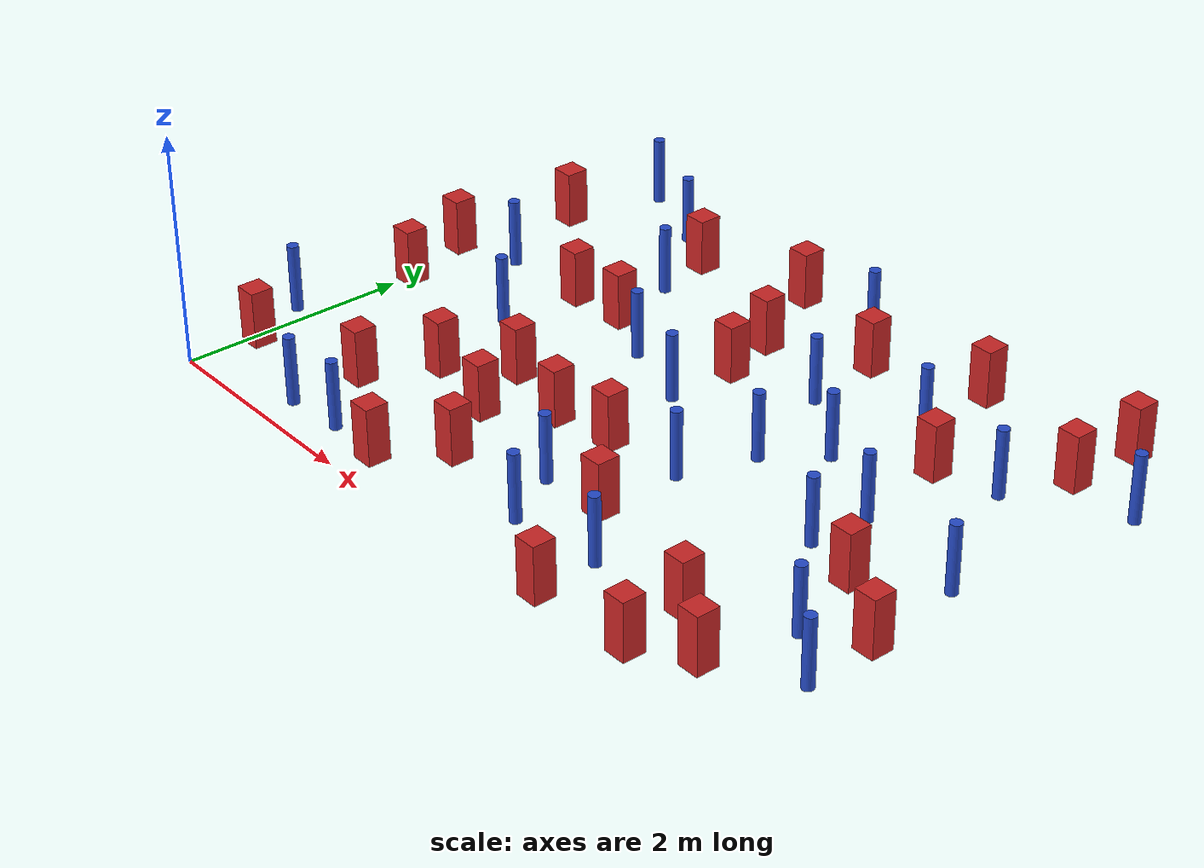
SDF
<sdf version="1.6">
 <model name="dense_67">
  <model name="square_post_obstacle9">
   <static>true</static>
   <pose>4.55035390656 4.47346086825 8.22691968438e-08 7.2212513382e-06 -7.54495500217e-07 2.29674213826e-05</pose>
   <link name="link">
    <pose>0 0 0.25 0 -0 0</pose>
    <inertial>
     <mass>100</mass>
     <inertia>
      <ixx>0.166667</ixx>
      <ixy>0</ixy>
      <ixz>0</ixz>
      <iyy>0.166667</iyy>
      <iyz>0</iyz>
      <izz>0.166667</izz>
     </inertia>
    </inertial>
    <collision name="collision"><geometry><box><size>.2 .2 .5</size></box></geometry></collision>
    <visual name="visual">
     <geometry><box><size>.2 .2 .5</size></box></geometry>
     <material>
      <script><name>Gazebo/Red</name><uri>file://media/materials/scripts/gazebo.material</uri></script>
     </material>
    </visual>
   </link>
  </model>
  <model name="pole_obstacle14">
   <static>true</static>
   <pose>5.5681106133 3.5373328224 2.88873142074e-08 -9.90536690245e-09 4.6021994898e-07 -1.20965994966e-07</pose>
   <link name="link">
    <pose>0 0 0.3 0 -0 0</pose>
    <inertial>
     <mass>1</mass>
     <inertia><ixx>0.145833</ixx><ixy>0</ixy><ixz>0</ixz><iyy>0.145833</iyy><iyz>0</iyz><izz>0.125</izz></inertia>
    </inertial>
    <collision name="collision">
     <geometry><cylinder><radius>0.05</radius><length>.6</length></cylinder></geometry>
    </collision>
    <visual name="visual">
     <geometry><cylinder><radius>0.05</radius><length>.6</length></cylinder></geometry>
     <material>
      <script><name>Gazebo/Blue</name><uri>file://media/materials/scripts/gazebo.material</uri></script>
     </material>
    </visual>
   </link>
  </model>
  <model name="pole_obstacle15">
   <static>true</static>
   <pose>4.38528797841 2.95199684706 2.88873142074e-08 -9.90536690245e-09 4.6021994898e-07 -1.20965994966e-07</pose>
   <link name="link">
    <pose>0 0 0.3 0 -0 0</pose>
    <inertial>
     <mass>1</mass>
     <inertia><ixx>0.145833</ixx><ixy>0</ixy><ixz>0</ixz><iyy>0.145833</iyy><iyz>0</iyz><izz>0.125</izz></inertia>
    </inertial>
    <collision name="collision">
     <geometry><cylinder><radius>0.05</radius><length>.6</length></cylinder></geometry>
    </collision>
    <visual name="visual">
     <geometry><cylinder><radius>0.05</radius><length>.6</length></cylinder></geometry>
     <material>
      <script><name>Gazebo/Blue</name><uri>file://media/materials/scripts/gazebo.material</uri></script>
     </material>
    </visual>
   </link>
  </model>
  <model name="pole_obstacle17">
   <static>true</static>
   <pose>1.5737481239 3.690412965 2.88873142074e-08 -9.90536689791e-09 4.6021994899e-07 -1.20965994959e-07</pose>
   <link name="link">
    <pose>0 0 0.3 0 -0 0</pose>
    <inertial>
     <mass>1</mass>
     <inertia><ixx>0.145833</ixx><ixy>0</ixy><ixz>0</ixz><iyy>0.145833</iyy><iyz>0</iyz><izz>0.125</izz></inertia>
    </inertial>
    <collision name="collision">
     <geometry><cylinder><radius>0.05</radius><length>.6</length></cylinder></geometry>
    </collision>
    <visual name="visual">
     <geometry><cylinder><radius>0.05</radius><length>.6</length></cylinder></geometry>
     <material>
      <script><name>Gazebo/Blue</name><uri>file://media/materials/scripts/gazebo.material</uri></script>
     </material>
    </visual>
   </link>
  </model>
  <model name="square_post_obstacle13">
   <static>true</static>
   <pose>1.11379736712 0.899175267969 8.22691968438e-08 7.2212513382e-06 -7.54495500217e-07 2.29674213826e-05</pose>
   <link name="link">
    <pose>0 0 0.25 0 -0 0</pose>
    <inertial>
     <mass>100</mass>
     <inertia>
      <ixx>0.166667</ixx>
      <ixy>0</ixy>
      <ixz>0</ixz>
      <iyy>0.166667</iyy>
      <iyz>0</iyz>
      <izz>0.166667</izz>
     </inertia>
    </inertial>
    <collision name="collision"><geometry><box><size>.2 .2 .5</size></box></geometry></collision>
    <visual name="visual">
     <geometry><box><size>.2 .2 .5</size></box></geometry>
     <material>
      <script><name>Gazebo/Red</name><uri>file://media/materials/scripts/gazebo.material</uri></script>
     </material>
    </visual>
   </link>
  </model>
  <model name="square_post_obstacle16">
   <static>true</static>
   <pose>-0.161220654232 2.8316874739 8.22691968438e-08 7.2212513382e-06 -7.54495500217e-07 2.29674213826e-05</pose>
   <link name="link">
    <pose>0 0 0.25 0 -0 0</pose>
    <inertial>
     <mass>100</mass>
     <inertia>
      <ixx>0.166667</ixx>
      <ixy>0</ixy>
      <ixz>0</ixz>
      <iyy>0.166667</iyy>
      <iyz>0</iyz>
      <izz>0.166667</izz>
     </inertia>
    </inertial>
    <collision name="collision"><geometry><box><size>.2 .2 .5</size></box></geometry></collision>
    <visual name="visual">
     <geometry><box><size>.2 .2 .5</size></box></geometry>
     <material>
      <script><name>Gazebo/Red</name><uri>file://media/materials/scripts/gazebo.material</uri></script>
     </material>
    </visual>
   </link>
  </model>
  <model name="square_post_obstacle17">
   <static>true</static>
   <pose>5.23929450298 0.213188726177 8.22691968438e-08 7.2212513382e-06 -7.54495500217e-07 2.29674213826e-05</pose>
   <link name="link">
    <pose>0 0 0.25 0 -0 0</pose>
    <inertial>
     <mass>100</mass>
     <inertia>
      <ixx>0.166667</ixx>
      <ixy>0</ixy>
      <ixz>0</ixz>
      <iyy>0.166667</iyy>
      <iyz>0</iyz>
      <izz>0.166667</izz>
     </inertia>
    </inertial>
    <collision name="collision"><geometry><box><size>.2 .2 .5</size></box></geometry></collision>
    <visual name="visual">
     <geometry><box><size>.2 .2 .5</size></box></geometry>
     <material>
      <script><name>Gazebo/Red</name><uri>file://media/materials/scripts/gazebo.material</uri></script>
     </material>
    </visual>
   </link>
  </model>
  <model name="pole_obstacle24">
   <static>true</static>
   <pose>4.31159911894 0.703843628609 2.88873142074e-08 -9.90536689837e-09 4.60219948989e-07 -1.2096599496e-07</pose>
   <link name="link">
    <pose>0 0 0.3 0 -0 0</pose>
    <inertial>
     <mass>1</mass>
     <inertia><ixx>0.145833</ixx><ixy>0</ixy><ixz>0</ixz><iyy>0.145833</iyy><iyz>0</iyz><izz>0.125</izz></inertia>
    </inertial>
    <collision name="collision">
     <geometry><cylinder><radius>0.05</radius><length>.6</length></cylinder></geometry>
    </collision>
    <visual name="visual">
     <geometry><cylinder><radius>0.05</radius><length>.6</length></cylinder></geometry>
     <material>
      <script><name>Gazebo/Blue</name><uri>file://media/materials/scripts/gazebo.material</uri></script>
     </material>
    </visual>
   </link>
  </model>
  <model name="square_post_obstacle28">
   <static>true</static>
   <pose>3.63643884922 4.1048677728 8.22691968438e-08 7.2212513382e-06 -7.54495500217e-07 2.29674213826e-05</pose>
   <link name="link">
    <pose>0 0 0.25 0 -0 0</pose>
    <inertial>
     <mass>100</mass>
     <inertia>
      <ixx>0.166667</ixx>
      <ixy>0</ixy>
      <ixz>0</ixz>
      <iyy>0.166667</iyy>
      <iyz>0</iyz>
      <izz>0.166667</izz>
     </inertia>
    </inertial>
    <collision name="collision"><geometry><box><size>.2 .2 .5</size></box></geometry></collision>
    <visual name="visual">
     <geometry><box><size>.2 .2 .5</size></box></geometry>
     <material>
      <script><name>Gazebo/Red</name><uri>file://media/materials/scripts/gazebo.material</uri></script>
     </material>
    </visual>
   </link>
  </model>
  <model name="pole_obstacle37">
   <static>true</static>
   <pose>3.23446060388 1.11048580937 2.88873142074e-08 -9.90536689395e-09 4.60219949e-07 -1.20965994953e-07</pose>
   <link name="link">
    <pose>0 0 0.3 0 -0 0</pose>
    <inertial>
     <mass>1</mass>
     <inertia><ixx>0.145833</ixx><ixy>0</ixy><ixz>0</ixz><iyy>0.145833</iyy><iyz>0</iyz><izz>0.125</izz></inertia>
    </inertial>
    <collision name="collision">
     <geometry><cylinder><radius>0.05</radius><length>.6</length></cylinder></geometry>
    </collision>
    <visual name="visual">
     <geometry><cylinder><radius>0.05</radius><length>.6</length></cylinder></geometry>
     <material>
      <script><name>Gazebo/Blue</name><uri>file://media/materials/scripts/gazebo.material</uri></script>
     </material>
    </visual>
   </link>
  </model>
  <model name="square_post_obstacle35">
   <static>true</static>
   <pose>1.41769313077 1.48172580425 8.22691968438e-08 7.2212513382e-06 -7.54495500217e-07 2.29674213826e-05</pose>
   <link name="link">
    <pose>0 0 0.25 0 -0 0</pose>
    <inertial>
     <mass>100</mass>
     <inertia>
      <ixx>0.166667</ixx>
      <ixy>0</ixy>
      <ixz>0</ixz>
      <iyy>0.166667</iyy>
      <iyz>0</iyz>
      <izz>0.166667</izz>
     </inertia>
    </inertial>
    <collision name="collision"><geometry><box><size>.2 .2 .5</size></box></geometry></collision>
    <visual name="visual">
     <geometry><box><size>.2 .2 .5</size></box></geometry>
     <material>
      <script><name>Gazebo/Red</name><uri>file://media/materials/scripts/gazebo.material</uri></script>
     </material>
    </visual>
   </link>
  </model>
  <model name="pole_obstacle48">
   <static>true</static>
   <pose>1.00786192687 4.43440262708 2.88873142074e-08 -9.90536689905e-09 4.60219948988e-07 -1.20965994961e-07</pose>
   <link name="link">
    <pose>0 0 0.3 0 -0 0</pose>
    <inertial>
     <mass>1</mass>
     <inertia><ixx>0.145833</ixx><ixy>0</ixy><ixz>0</ixz><iyy>0.145833</iyy><iyz>0</iyz><izz>0.125</izz></inertia>
    </inertial>
    <collision name="collision">
     <geometry><cylinder><radius>0.05</radius><length>.6</length></cylinder></geometry>
    </collision>
    <visual name="visual">
     <geometry><cylinder><radius>0.05</radius><length>.6</length></cylinder></geometry>
     <material>
      <script><name>Gazebo/Blue</name><uri>file://media/materials/scripts/gazebo.material</uri></script>
     </material>
    </visual>
   </link>
  </model>
  <model name="pole_obstacle57">
   <static>true</static>
   <pose>2.94566683293 2.59472105093 2.88873142074e-08 -9.90536690232e-09 4.6021994898e-07 -1.20965994968e-07</pose>
   <link name="link">
    <pose>0 0 0.3 0 -0 0</pose>
    <inertial>
     <mass>1</mass>
     <inertia><ixx>0.145833</ixx><ixy>0</ixy><ixz>0</ixz><iyy>0.145833</iyy><iyz>0</iyz><izz>0.125</izz></inertia>
    </inertial>
    <collision name="collision">
     <geometry><cylinder><radius>0.05</radius><length>.6</length></cylinder></geometry>
    </collision>
    <visual name="visual">
     <geometry><cylinder><radius>0.05</radius><length>.6</length></cylinder></geometry>
     <material>
      <script><name>Gazebo/Blue</name><uri>file://media/materials/scripts/gazebo.material</uri></script>
     </material>
    </visual>
   </link>
  </model>
  <model name="square_post_obstacle45">
   <static>true</static>
   <pose>3.81785836751 1.15883964773 8.22691968438e-08 7.2212513382e-06 -7.54495500217e-07 2.29674213826e-05</pose>
   <link name="link">
    <pose>0 0 0.25 0 -0 0</pose>
    <inertial>
     <mass>100</mass>
     <inertia>
      <ixx>0.166667</ixx>
      <ixy>0</ixy>
      <ixz>0</ixz>
      <iyy>0.166667</iyy>
      <iyz>0</iyz>
      <izz>0.166667</izz>
     </inertia>
    </inertial>
    <collision name="collision"><geometry><box><size>.2 .2 .5</size></box></geometry></collision>
    <visual name="visual">
     <geometry><box><size>.2 .2 .5</size></box></geometry>
     <material>
      <script><name>Gazebo/Red</name><uri>file://media/materials/scripts/gazebo.material</uri></script>
     </material>
    </visual>
   </link>
  </model>
  <model name="pole_obstacle65">
   <static>true</static>
   <pose>0.270718877437 4.73403094236 2.88873142074e-08 -9.90536689592e-09 4.60219948995e-07 -1.20965994956e-07</pose>
   <link name="link">
    <pose>0 0 0.3 0 -0 0</pose>
    <inertial>
     <mass>1</mass>
     <inertia><ixx>0.145833</ixx><ixy>0</ixy><ixz>0</ixz><iyy>0.145833</iyy><iyz>0</iyz><izz>0.125</izz></inertia>
    </inertial>
    <collision name="collision">
     <geometry><cylinder><radius>0.05</radius><length>.6</length></cylinder></geometry>
    </collision>
    <visual name="visual">
     <geometry><cylinder><radius>0.05</radius><length>.6</length></cylinder></geometry>
     <material>
      <script><name>Gazebo/Blue</name><uri>file://media/materials/scripts/gazebo.material</uri></script>
     </material>
    </visual>
   </link>
  </model>
  <model name="pole_obstacle77">
   <static>true</static>
   <pose>1.06598507975 0.28859164495 2.88873142074e-08 -9.90536689701e-09 4.60219948992e-07 -1.2096599496e-07</pose>
   <link name="link">
    <pose>0 0 0.3 0 -0 0</pose>
    <inertial>
     <mass>1</mass>
     <inertia><ixx>0.145833</ixx><ixy>0</ixy><ixz>0</ixz><iyy>0.145833</iyy><iyz>0</iyz><izz>0.125</izz></inertia>
    </inertial>
    <collision name="collision">
     <geometry><cylinder><radius>0.05</radius><length>.6</length></cylinder></geometry>
    </collision>
    <visual name="visual">
     <geometry><cylinder><radius>0.05</radius><length>.6</length></cylinder></geometry>
     <material>
      <script><name>Gazebo/Blue</name><uri>file://media/materials/scripts/gazebo.material</uri></script>
     </material>
    </visual>
   </link>
  </model>
  <model name="square_post_obstacle66">
   <static>true</static>
   <pose>2.52376509228 0.782931671548 8.22691968438e-08 7.2212513382e-06 -7.54495500217e-07 2.29674213826e-05</pose>
   <link name="link">
    <pose>0 0 0.25 0 -0 0</pose>
    <inertial>
     <mass>100</mass>
     <inertia>
      <ixx>0.166667</ixx>
      <ixy>0</ixy>
      <ixz>0</ixz>
      <iyy>0.166667</iyy>
      <iyz>0</iyz>
      <izz>0.166667</izz>
     </inertia>
    </inertial>
    <collision name="collision"><geometry><box><size>.2 .2 .5</size></box></geometry></collision>
    <visual name="visual">
     <geometry><box><size>.2 .2 .5</size></box></geometry>
     <material>
      <script><name>Gazebo/Red</name><uri>file://media/materials/scripts/gazebo.material</uri></script>
     </material>
    </visual>
   </link>
  </model>
  <model name="pole_obstacle78">
   <static>true</static>
   <pose>5.16090880568 2.57445925042 2.88873142074e-08 -9.90536690245e-09 4.6021994898e-07 -1.20965994966e-07</pose>
   <link name="link">
    <pose>0 0 0.3 0 -0 0</pose>
    <inertial>
     <mass>1</mass>
     <inertia><ixx>0.145833</ixx><ixy>0</ixy><ixz>0</ixz><iyy>0.145833</iyy><iyz>0</iyz><izz>0.125</izz></inertia>
    </inertial>
    <collision name="collision">
     <geometry><cylinder><radius>0.05</radius><length>.6</length></cylinder></geometry>
    </collision>
    <visual name="visual">
     <geometry><cylinder><radius>0.05</radius><length>.6</length></cylinder></geometry>
     <material>
      <script><name>Gazebo/Blue</name><uri>file://media/materials/scripts/gazebo.material</uri></script>
     </material>
    </visual>
   </link>
  </model>
  <model name="pole_obstacle79">
   <static>true</static>
   <pose>3.82646906627 1.88140310757 2.88873142074e-08 -9.90536689395e-09 4.60219949e-07 -1.20965994953e-07</pose>
   <link name="link">
    <pose>0 0 0.3 0 -0 0</pose>
    <inertial>
     <mass>1</mass>
     <inertia><ixx>0.145833</ixx><ixy>0</ixy><ixz>0</ixz><iyy>0.145833</iyy><iyz>0</iyz><izz>0.125</izz></inertia>
    </inertial>
    <collision name="collision">
     <geometry><cylinder><radius>0.05</radius><length>.6</length></cylinder></geometry>
    </collision>
    <visual name="visual">
     <geometry><cylinder><radius>0.05</radius><length>.6</length></cylinder></geometry>
     <material>
      <script><name>Gazebo/Blue</name><uri>file://media/materials/scripts/gazebo.material</uri></script>
     </material>
    </visual>
   </link>
  </model>
  <model name="pole_obstacle86">
   <static>true</static>
   <pose>0.377105399158 3.02284715716 2.88873142074e-08 -9.90536689663e-09 4.60219948993e-07 -1.20965994959e-07</pose>
   <link name="link">
    <pose>0 0 0.3 0 -0 0</pose>
    <inertial>
     <mass>1</mass>
     <inertia><ixx>0.145833</ixx><ixy>0</ixy><ixz>0</ixz><iyy>0.145833</iyy><iyz>0</iyz><izz>0.125</izz></inertia>
    </inertial>
    <collision name="collision">
     <geometry><cylinder><radius>0.05</radius><length>.6</length></cylinder></geometry>
    </collision>
    <visual name="visual">
     <geometry><cylinder><radius>0.05</radius><length>.6</length></cylinder></geometry>
     <material>
      <script><name>Gazebo/Blue</name><uri>file://media/materials/scripts/gazebo.material</uri></script>
     </material>
    </visual>
   </link>
  </model>
  <model name="pole_obstacle89">
   <static>true</static>
   <pose>1.09760732458 2.33933812099 2.88873142074e-08 -9.90536689791e-09 4.6021994899e-07 -1.20965994959e-07</pose>
   <link name="link">
    <pose>0 0 0.3 0 -0 0</pose>
    <inertial>
     <mass>1</mass>
     <inertia><ixx>0.145833</ixx><ixy>0</ixy><ixz>0</ixz><iyy>0.145833</iyy><iyz>0</iyz><izz>0.125</izz></inertia>
    </inertial>
    <collision name="collision">
     <geometry><cylinder><radius>0.05</radius><length>.6</length></cylinder></geometry>
    </collision>
    <visual name="visual">
     <geometry><cylinder><radius>0.05</radius><length>.6</length></cylinder></geometry>
     <material>
      <script><name>Gazebo/Blue</name><uri>file://media/materials/scripts/gazebo.material</uri></script>
     </material>
    </visual>
   </link>
  </model>
  <model name="pole_obstacle95">
   <static>true</static>
   <pose>3.50525130141 0.609288761251 2.88873142074e-08 -9.90536689285e-09 4.60219949002e-07 -1.20965994953e-07</pose>
   <link name="link">
    <pose>0 0 0.3 0 -0 0</pose>
    <inertial>
     <mass>1</mass>
     <inertia><ixx>0.145833</ixx><ixy>0</ixy><ixz>0</ixz><iyy>0.145833</iyy><iyz>0</iyz><izz>0.125</izz></inertia>
    </inertial>
    <collision name="collision">
     <geometry><cylinder><radius>0.05</radius><length>.6</length></cylinder></geometry>
    </collision>
    <visual name="visual">
     <geometry><cylinder><radius>0.05</radius><length>.6</length></cylinder></geometry>
     <material>
      <script><name>Gazebo/Blue</name><uri>file://media/materials/scripts/gazebo.material</uri></script>
     </material>
    </visual>
   </link>
  </model>
  <model name="pole_obstacle97">
   <static>true</static>
   <pose>1.58671188744 0.332646929256 2.88873142074e-08 -9.90536689733e-09 4.60219948992e-07 -1.20965994959e-07</pose>
   <link name="link">
    <pose>0 0 0.3 0 -0 0</pose>
    <inertial>
     <mass>1</mass>
     <inertia><ixx>0.145833</ixx><ixy>0</ixy><ixz>0</ixz><iyy>0.145833</iyy><iyz>0</iyz><izz>0.125</izz></inertia>
    </inertial>
    <collision name="collision">
     <geometry><cylinder><radius>0.05</radius><length>.6</length></cylinder></geometry>
    </collision>
    <visual name="visual">
     <geometry><cylinder><radius>0.05</radius><length>.6</length></cylinder></geometry>
     <material>
      <script><name>Gazebo/Blue</name><uri>file://media/materials/scripts/gazebo.material</uri></script>
     </material>
    </visual>
   </link>
  </model>
  <model name="square_post_obstacle89">
   <static>true</static>
   <pose>2.47188189758 4.46814022276 8.22691968438e-08 7.2212513382e-06 -7.54495500217e-07 2.29674213826e-05</pose>
   <link name="link">
    <pose>0 0 0.25 0 -0 0</pose>
    <inertial>
     <mass>100</mass>
     <inertia>
      <ixx>0.166667</ixx>
      <ixy>0</ixy>
      <ixz>0</ixz>
      <iyy>0.166667</iyy>
      <iyz>0</iyz>
      <izz>0.166667</izz>
     </inertia>
    </inertial>
    <collision name="collision"><geometry><box><size>.2 .2 .5</size></box></geometry></collision>
    <visual name="visual">
     <geometry><box><size>.2 .2 .5</size></box></geometry>
     <material>
      <script><name>Gazebo/Red</name><uri>file://media/materials/scripts/gazebo.material</uri></script>
     </material>
    </visual>
   </link>
  </model>
  <model name="pole_obstacle98">
   <static>true</static>
   <pose>4.03098671006 2.52177366975 2.88873142074e-08 -9.90536689988e-09 4.60219948986e-07 -1.20965994963e-07</pose>
   <link name="link">
    <pose>0 0 0.3 0 -0 0</pose>
    <inertial>
     <mass>1</mass>
     <inertia><ixx>0.145833</ixx><ixy>0</ixy><ixz>0</ixz><iyy>0.145833</iyy><iyz>0</iyz><izz>0.125</izz></inertia>
    </inertial>
    <collision name="collision">
     <geometry><cylinder><radius>0.05</radius><length>.6</length></cylinder></geometry>
    </collision>
    <visual name="visual">
     <geometry><cylinder><radius>0.05</radius><length>.6</length></cylinder></geometry>
     <material>
      <script><name>Gazebo/Blue</name><uri>file://media/materials/scripts/gazebo.material</uri></script>
     </material>
    </visual>
   </link>
  </model>
  <model name="pole_obstacle99">
   <static>true</static>
   <pose>-0.169515201322 1.14381438664 2.88873142074e-08 -9.90536689579e-09 4.60219948995e-07 -1.20965994956e-07</pose>
   <link name="link">
    <pose>0 0 0.3 0 -0 0</pose>
    <inertial>
     <mass>1</mass>
     <inertia><ixx>0.145833</ixx><ixy>0</ixy><ixz>0</ixz><iyy>0.145833</iyy><iyz>0</iyz><izz>0.125</izz></inertia>
    </inertial>
    <collision name="collision">
     <geometry><cylinder><radius>0.05</radius><length>.6</length></cylinder></geometry>
    </collision>
    <visual name="visual">
     <geometry><cylinder><radius>0.05</radius><length>.6</length></cylinder></geometry>
     <material>
      <script><name>Gazebo/Blue</name><uri>file://media/materials/scripts/gazebo.material</uri></script>
     </material>
    </visual>
   </link>
  </model>
  <model name="square_post_obstacle91">
   <static>true</static>
   <pose>1.73781882217 3.06236583662 8.22691968438e-08 7.2212513382e-06 -7.54495500217e-07 2.29674213826e-05</pose>
   <link name="link">
    <pose>0 0 0.25 0 -0 0</pose>
    <inertial>
     <mass>100</mass>
     <inertia>
      <ixx>0.166667</ixx>
      <ixy>0</ixy>
      <ixz>0</ixz>
      <iyy>0.166667</iyy>
      <iyz>0</iyz>
      <izz>0.166667</izz>
     </inertia>
    </inertial>
    <collision name="collision"><geometry><box><size>.2 .2 .5</size></box></geometry></collision>
    <visual name="visual">
     <geometry><box><size>.2 .2 .5</size></box></geometry>
     <material>
      <script><name>Gazebo/Red</name><uri>file://media/materials/scripts/gazebo.material</uri></script>
     </material>
    </visual>
   </link>
  </model>
  <model name="square_post_obstacle92">
   <static>true</static>
   <pose>0.0524092540344 3.89401540763 8.22691968438e-08 7.2212513382e-06 -7.54495500217e-07 2.29674213826e-05</pose>
   <link name="link">
    <pose>0 0 0.25 0 -0 0</pose>
    <inertial>
     <mass>100</mass>
     <inertia>
      <ixx>0.166667</ixx>
      <ixy>0</ixy>
      <ixz>0</ixz>
      <iyy>0.166667</iyy>
      <iyz>0</iyz>
      <izz>0.166667</izz>
     </inertia>
    </inertial>
    <collision name="collision"><geometry><box><size>.2 .2 .5</size></box></geometry></collision>
    <visual name="visual">
     <geometry><box><size>.2 .2 .5</size></box></geometry>
     <material>
      <script><name>Gazebo/Red</name><uri>file://media/materials/scripts/gazebo.material</uri></script>
     </material>
    </visual>
   </link>
  </model>
  <model name="square_post_obstacle93">
   <static>true</static>
   <pose>0.0725017949885 0.614834389163 8.22691968438e-08 7.2212513382e-06 -7.54495500217e-07 2.29674213826e-05</pose>
   <link name="link">
    <pose>0 0 0.25 0 -0 0</pose>
    <inertial>
     <mass>100</mass>
     <inertia>
      <ixx>0.166667</ixx>
      <ixy>0</ixy>
      <ixz>0</ixz>
      <iyy>0.166667</iyy>
      <iyz>0</iyz>
      <izz>0.166667</izz>
     </inertia>
    </inertial>
    <collision name="collision"><geometry><box><size>.2 .2 .5</size></box></geometry></collision>
    <visual name="visual">
     <geometry><box><size>.2 .2 .5</size></box></geometry>
     <material>
      <script><name>Gazebo/Red</name><uri>file://media/materials/scripts/gazebo.material</uri></script>
     </material>
    </visual>
   </link>
  </model>
  <model name="square_post_obstacle102">
   <static>true</static>
   <pose>2.15015196926 1.3253885089 8.22691968438e-08 7.2212513382e-06 -7.54495500217e-07 2.29674213826e-05</pose>
   <link name="link">
    <pose>0 0 0.25 0 -0 0</pose>
    <inertial>
     <mass>100</mass>
     <inertia>
      <ixx>0.166667</ixx>
      <ixy>0</ixy>
      <ixz>0</ixz>
      <iyy>0.166667</iyy>
      <iyz>0</iyz>
      <izz>0.166667</izz>
     </inertia>
    </inertial>
    <collision name="collision"><geometry><box><size>.2 .2 .5</size></box></geometry></collision>
    <visual name="visual">
     <geometry><box><size>.2 .2 .5</size></box></geometry>
     <material>
      <script><name>Gazebo/Red</name><uri>file://media/materials/scripts/gazebo.material</uri></script>
     </material>
    </visual>
   </link>
  </model>
  <model name="pole_obstacle107">
   <static>true</static>
   <pose>6.33377258249 0.888941592296 2.88873142074e-08 -9.90536689837e-09 4.60219948989e-07 -1.2096599496e-07</pose>
   <link name="link">
    <pose>0 0 0.3 0 -0 0</pose>
    <inertial>
     <mass>1</mass>
     <inertia><ixx>0.145833</ixx><ixy>0</ixy><ixz>0</ixz><iyy>0.145833</iyy><iyz>0</iyz><izz>0.125</izz></inertia>
    </inertial>
    <collision name="collision">
     <geometry><cylinder><radius>0.05</radius><length>.6</length></cylinder></geometry>
    </collision>
    <visual name="visual">
     <geometry><cylinder><radius>0.05</radius><length>.6</length></cylinder></geometry>
     <material>
      <script><name>Gazebo/Blue</name><uri>file://media/materials/scripts/gazebo.material</uri></script>
     </material>
    </visual>
   </link>
  </model>
  <model name="square_post_obstacle104">
   <static>true</static>
   <pose>6.30590623799 1.51671406849 8.22691968438e-08 7.2212513382e-06 -7.54495500217e-07 2.29674213826e-05</pose>
   <link name="link">
    <pose>0 0 0.25 0 -0 0</pose>
    <inertial>
     <mass>100</mass>
     <inertia>
      <ixx>0.166667</ixx>
      <ixy>0</ixy>
      <ixz>0</ixz>
      <iyy>0.166667</iyy>
      <iyz>0</iyz>
      <izz>0.166667</izz>
     </inertia>
    </inertial>
    <collision name="collision"><geometry><box><size>.2 .2 .5</size></box></geometry></collision>
    <visual name="visual">
     <geometry><box><size>.2 .2 .5</size></box></geometry>
     <material>
      <script><name>Gazebo/Red</name><uri>file://media/materials/scripts/gazebo.material</uri></script>
     </material>
    </visual>
   </link>
  </model>
  <model name="square_post_obstacle121">
   <static>true</static>
   <pose>2.83057806169 3.70297941434 8.22691968438e-08 7.2212513382e-06 -7.54495500217e-07 2.29674213826e-05</pose>
   <link name="link">
    <pose>0 0 0.25 0 -0 0</pose>
    <inertial>
     <mass>100</mass>
     <inertia>
      <ixx>0.166667</ixx>
      <ixy>0</ixy>
      <ixz>0</ixz>
      <iyy>0.166667</iyy>
      <iyz>0</iyz>
      <izz>0.166667</izz>
     </inertia>
    </inertial>
    <collision name="collision"><geometry><box><size>.2 .2 .5</size></box></geometry></collision>
    <visual name="visual">
     <geometry><box><size>.2 .2 .5</size></box></geometry>
     <material>
      <script><name>Gazebo/Red</name><uri>file://media/materials/scripts/gazebo.material</uri></script>
     </material>
    </visual>
   </link>
  </model>
  <model name="pole_obstacle148">
   <static>true</static>
   <pose>5.12370749509 2.05348984226 2.88873142074e-08 -9.90536690245e-09 4.6021994898e-07 -1.20965994966e-07</pose>
   <link name="link">
    <pose>0 0 0.3 0 -0 0</pose>
    <inertial>
     <mass>1</mass>
     <inertia><ixx>0.145833</ixx><ixy>0</ixy><ixz>0</ixz><iyy>0.145833</iyy><iyz>0</iyz><izz>0.125</izz></inertia>
    </inertial>
    <collision name="collision">
     <geometry><cylinder><radius>0.05</radius><length>.6</length></cylinder></geometry>
    </collision>
    <visual name="visual">
     <geometry><cylinder><radius>0.05</radius><length>.6</length></cylinder></geometry>
     <material>
      <script><name>Gazebo/Blue</name><uri>file://media/materials/scripts/gazebo.material</uri></script>
     </material>
    </visual>
   </link>
  </model>
  <model name="square_post_obstacle144">
   <static>true</static>
   <pose>3.13677065802 1.80826441303 8.22691968438e-08 7.2212513382e-06 -7.54495500217e-07 2.29674213826e-05</pose>
   <link name="link">
    <pose>0 0 0.25 0 -0 0</pose>
    <inertial>
     <mass>100</mass>
     <inertia>
      <ixx>0.166667</ixx>
      <ixy>0</ixy>
      <ixz>0</ixz>
      <iyy>0.166667</iyy>
      <iyz>0</iyz>
      <izz>0.166667</izz>
     </inertia>
    </inertial>
    <collision name="collision"><geometry><box><size>.2 .2 .5</size></box></geometry></collision>
    <visual name="visual">
     <geometry><box><size>.2 .2 .5</size></box></geometry>
     <material>
      <script><name>Gazebo/Red</name><uri>file://media/materials/scripts/gazebo.material</uri></script>
     </material>
    </visual>
   </link>
  </model>
  <model name="square_post_obstacle147">
   <static>true</static>
   <pose>4.33867481504 0.154891175625 8.22691968438e-08 7.2212513382e-06 -7.54495500217e-07 2.29674213826e-05</pose>
   <link name="link">
    <pose>0 0 0.25 0 -0 0</pose>
    <inertial>
     <mass>100</mass>
     <inertia>
      <ixx>0.166667</ixx>
      <ixy>0</ixy>
      <ixz>0</ixz>
      <iyy>0.166667</iyy>
      <iyz>0</iyz>
      <izz>0.166667</izz>
     </inertia>
    </inertial>
    <collision name="collision"><geometry><box><size>.2 .2 .5</size></box></geometry></collision>
    <visual name="visual">
     <geometry><box><size>.2 .2 .5</size></box></geometry>
     <material>
      <script><name>Gazebo/Red</name><uri>file://media/materials/scripts/gazebo.material</uri></script>
     </material>
    </visual>
   </link>
  </model>
  <model name="square_post_obstacle150">
   <static>true</static>
   <pose>5.84997625306 4.72483028517 8.22691968438e-08 7.2212513382e-06 -7.54495500217e-07 2.29674213826e-05</pose>
   <link name="link">
    <pose>0 0 0.25 0 -0 0</pose>
    <inertial>
     <mass>100</mass>
     <inertia>
      <ixx>0.166667</ixx>
      <ixy>0</ixy>
      <ixz>0</ixz>
      <iyy>0.166667</iyy>
      <iyz>0</iyz>
      <izz>0.166667</izz>
     </inertia>
    </inertial>
    <collision name="collision"><geometry><box><size>.2 .2 .5</size></box></geometry></collision>
    <visual name="visual">
     <geometry><box><size>.2 .2 .5</size></box></geometry>
     <material>
      <script><name>Gazebo/Red</name><uri>file://media/materials/scripts/gazebo.material</uri></script>
     </material>
    </visual>
   </link>
  </model>
  <model name="pole_obstacle165">
   <static>true</static>
   <pose>6.4414611261 4.05275407213 2.88873142074e-08 -9.90536690842e-09 4.60219948965e-07 -1.20965994976e-07</pose>
   <link name="link">
    <pose>0 0 0.3 0 -0 0</pose>
    <inertial>
     <mass>1</mass>
     <inertia><ixx>0.145833</ixx><ixy>0</ixy><ixz>0</ixz><iyy>0.145833</iyy><iyz>0</iyz><izz>0.125</izz></inertia>
    </inertial>
    <collision name="collision">
     <geometry><cylinder><radius>0.05</radius><length>.6</length></cylinder></geometry>
    </collision>
    <visual name="visual">
     <geometry><cylinder><radius>0.05</radius><length>.6</length></cylinder></geometry>
     <material>
      <script><name>Gazebo/Blue</name><uri>file://media/materials/scripts/gazebo.material</uri></script>
     </material>
    </visual>
   </link>
  </model>
  <model name="pole_obstacle167">
   <static>true</static>
   <pose>5.86634979644 1.24212586143 2.88873142074e-08 -9.90536689445e-09 4.60219948999e-07 -1.20965994956e-07</pose>
   <link name="link">
    <pose>0 0 0.3 0 -0 0</pose>
    <inertial>
     <mass>1</mass>
     <inertia><ixx>0.145833</ixx><ixy>0</ixy><ixz>0</ixz><iyy>0.145833</iyy><iyz>0</iyz><izz>0.125</izz></inertia>
    </inertial>
    <collision name="collision">
     <geometry><cylinder><radius>0.05</radius><length>.6</length></cylinder></geometry>
    </collision>
    <visual name="visual">
     <geometry><cylinder><radius>0.05</radius><length>.6</length></cylinder></geometry>
     <material>
      <script><name>Gazebo/Blue</name><uri>file://media/materials/scripts/gazebo.material</uri></script>
     </material>
    </visual>
   </link>
  </model>
  <model name="square_post_obstacle168">
   <static>true</static>
   <pose>2.97391117099 3.19697348055 8.22691968438e-08 7.2212513382e-06 -7.54495500217e-07 2.29674213826e-05</pose>
   <link name="link">
    <pose>0 0 0.25 0 -0 0</pose>
    <inertial>
     <mass>100</mass>
     <inertia>
      <ixx>0.166667</ixx>
      <ixy>0</ixy>
      <ixz>0</ixz>
      <iyy>0.166667</iyy>
      <iyz>0</iyz>
      <izz>0.166667</izz>
     </inertia>
    </inertial>
    <collision name="collision"><geometry><box><size>.2 .2 .5</size></box></geometry></collision>
    <visual name="visual">
     <geometry><box><size>.2 .2 .5</size></box></geometry>
     <material>
      <script><name>Gazebo/Red</name><uri>file://media/materials/scripts/gazebo.material</uri></script>
     </material>
    </visual>
   </link>
  </model>
  <model name="pole_obstacle173">
   <static>true</static>
   <pose>3.70510525051 3.42223382947 2.88873142074e-08 -9.90536690232e-09 4.6021994898e-07 -1.20965994968e-07</pose>
   <link name="link">
    <pose>0 0 0.3 0 -0 0</pose>
    <inertial>
     <mass>1</mass>
     <inertia><ixx>0.145833</ixx><ixy>0</ixy><ixz>0</ixz><iyy>0.145833</iyy><iyz>0</iyz><izz>0.125</izz></inertia>
    </inertial>
    <collision name="collision">
     <geometry><cylinder><radius>0.05</radius><length>.6</length></cylinder></geometry>
    </collision>
    <visual name="visual">
     <geometry><cylinder><radius>0.05</radius><length>.6</length></cylinder></geometry>
     <material>
      <script><name>Gazebo/Blue</name><uri>file://media/materials/scripts/gazebo.material</uri></script>
     </material>
    </visual>
   </link>
  </model>
  <model name="square_post_obstacle174">
   <static>true</static>
   <pose>2.59353296787 1.71707746816 8.22691968438e-08 7.2212513382e-06 -7.54495500217e-07 2.29674213826e-05</pose>
   <link name="link">
    <pose>0 0 0.25 0 -0 0</pose>
    <inertial>
     <mass>100</mass>
     <inertia>
      <ixx>0.166667</ixx>
      <ixy>0</ixy>
      <ixz>0</ixz>
      <iyy>0.166667</iyy>
      <iyz>0</iyz>
      <izz>0.166667</izz>
     </inertia>
    </inertial>
    <collision name="collision"><geometry><box><size>.2 .2 .5</size></box></geometry></collision>
    <visual name="visual">
     <geometry><box><size>.2 .2 .5</size></box></geometry>
     <material>
      <script><name>Gazebo/Red</name><uri>file://media/materials/scripts/gazebo.material</uri></script>
     </material>
    </visual>
   </link>
  </model>
  <model name="pole_obstacle183">
   <static>true</static>
   <pose>3.23472367611 4.508795414 2.88873142074e-08 -9.90536689859e-09 4.60219948989e-07 -1.20965994961e-07</pose>
   <link name="link">
    <pose>0 0 0.3 0 -0 0</pose>
    <inertial>
     <mass>1</mass>
     <inertia><ixx>0.145833</ixx><ixy>0</ixy><ixz>0</ixz><iyy>0.145833</iyy><iyz>0</iyz><izz>0.125</izz></inertia>
    </inertial>
    <collision name="collision">
     <geometry><cylinder><radius>0.05</radius><length>.6</length></cylinder></geometry>
    </collision>
    <visual name="visual">
     <geometry><cylinder><radius>0.05</radius><length>.6</length></cylinder></geometry>
     <material>
      <script><name>Gazebo/Blue</name><uri>file://media/materials/scripts/gazebo.material</uri></script>
     </material>
    </visual>
   </link>
  </model>
  <model name="pole_obstacle184">
   <static>true</static>
   <pose>2.25234178558 2.81792937629 2.88873142074e-08 -9.90536690232e-09 4.6021994898e-07 -1.20965994968e-07</pose>
   <link name="link">
    <pose>0 0 0.3 0 -0 0</pose>
    <inertial>
     <mass>1</mass>
     <inertia><ixx>0.145833</ixx><ixy>0</ixy><ixz>0</ixz><iyy>0.145833</iyy><iyz>0</iyz><izz>0.125</izz></inertia>
    </inertial>
    <collision name="collision">
     <geometry><cylinder><radius>0.05</radius><length>.6</length></cylinder></geometry>
    </collision>
    <visual name="visual">
     <geometry><cylinder><radius>0.05</radius><length>.6</length></cylinder></geometry>
     <material>
      <script><name>Gazebo/Blue</name><uri>file://media/materials/scripts/gazebo.material</uri></script>
     </material>
    </visual>
   </link>
  </model>
  <model name="square_post_obstacle188">
   <static>true</static>
   <pose>1.21135377761 3.03280539431 8.22691968438e-08 7.2212513382e-06 -7.54495500217e-07 2.29674213826e-05</pose>
   <link name="link">
    <pose>0 0 0.25 0 -0 0</pose>
    <inertial>
     <mass>100</mass>
     <inertia>
      <ixx>0.166667</ixx>
      <ixy>0</ixy>
      <ixz>0</ixz>
      <iyy>0.166667</iyy>
      <iyz>0</iyz>
      <izz>0.166667</izz>
     </inertia>
    </inertial>
    <collision name="collision"><geometry><box><size>.2 .2 .5</size></box></geometry></collision>
    <visual name="visual">
     <geometry><box><size>.2 .2 .5</size></box></geometry>
     <material>
      <script><name>Gazebo/Red</name><uri>file://media/materials/scripts/gazebo.material</uri></script>
     </material>
    </visual>
   </link>
  </model>
  <model name="square_post_obstacle190">
   <static>true</static>
   <pose>0.0227232470835 2.18496627966 8.22691968438e-08 7.2212513382e-06 -7.54495500217e-07 2.29674213826e-05</pose>
   <link name="link">
    <pose>0 0 0.25 0 -0 0</pose>
    <inertial>
     <mass>100</mass>
     <inertia>
      <ixx>0.166667</ixx>
      <ixy>0</ixy>
      <ixz>0</ixz>
      <iyy>0.166667</iyy>
      <iyz>0</iyz>
      <izz>0.166667</izz>
     </inertia>
    </inertial>
    <collision name="collision"><geometry><box><size>.2 .2 .5</size></box></geometry></collision>
    <visual name="visual">
     <geometry><box><size>.2 .2 .5</size></box></geometry>
     <material>
      <script><name>Gazebo/Red</name><uri>file://media/materials/scripts/gazebo.material</uri></script>
     </material>
    </visual>
   </link>
  </model>
  <model name="square_post_obstacle197">
   <static>true</static>
   <pose>5.03423069948 3.38866391808 8.22691968438e-08 7.2212513382e-06 -7.54495500217e-07 2.29674213826e-05</pose>
   <link name="link">
    <pose>0 0 0.25 0 -0 0</pose>
    <inertial>
     <mass>100</mass>
     <inertia>
      <ixx>0.166667</ixx>
      <ixy>0</ixy>
      <ixz>0</ixz>
      <iyy>0.166667</iyy>
      <iyz>0</iyz>
      <izz>0.166667</izz>
     </inertia>
    </inertial>
    <collision name="collision"><geometry><box><size>.2 .2 .5</size></box></geometry></collision>
    <visual name="visual">
     <geometry><box><size>.2 .2 .5</size></box></geometry>
     <material>
      <script><name>Gazebo/Red</name><uri>file://media/materials/scripts/gazebo.material</uri></script>
     </material>
    </visual>
   </link>
  </model>
  <model name="square_post_obstacle200">
   <static>true</static>
   <pose>5.64086753582 1.93026220496 8.22691968438e-08 7.2212513382e-06 -7.54495500217e-07 2.29674213826e-05</pose>
   <link name="link">
    <pose>0 0 0.25 0 -0 0</pose>
    <inertial>
     <mass>100</mass>
     <inertia>
      <ixx>0.166667</ixx>
      <ixy>0</ixy>
      <ixz>0</ixz>
      <iyy>0.166667</iyy>
      <iyz>0</iyz>
      <izz>0.166667</izz>
     </inertia>
    </inertial>
    <collision name="collision"><geometry><box><size>.2 .2 .5</size></box></geometry></collision>
    <visual name="visual">
     <geometry><box><size>.2 .2 .5</size></box></geometry>
     <material>
      <script><name>Gazebo/Red</name><uri>file://media/materials/scripts/gazebo.material</uri></script>
     </material>
    </visual>
   </link>
  </model>
  <model name="square_post_obstacle205">
   <static>true</static>
   <pose>2.12683715136 0.300993379198 8.22691968438e-08 7.2212513382e-06 -7.54495500217e-07 2.29674213826e-05</pose>
   <link name="link">
    <pose>0 0 0.25 0 -0 0</pose>
    <inertial>
     <mass>100</mass>
     <inertia>
      <ixx>0.166667</ixx>
      <ixy>0</ixy>
      <ixz>0</ixz>
      <iyy>0.166667</iyy>
      <iyz>0</iyz>
      <izz>0.166667</izz>
     </inertia>
    </inertial>
    <collision name="collision"><geometry><box><size>.2 .2 .5</size></box></geometry></collision>
    <visual name="visual">
     <geometry><box><size>.2 .2 .5</size></box></geometry>
     <material>
      <script><name>Gazebo/Red</name><uri>file://media/materials/scripts/gazebo.material</uri></script>
     </material>
    </visual>
   </link>
  </model>
  <model name="square_post_obstacle207">
   <static>true</static>
   <pose>1.89414489653 1.88601920286 8.22691968438e-08 7.2212513382e-06 -7.54495500217e-07 2.29674213826e-05</pose>
   <link name="link">
    <pose>0 0 0.25 0 -0 0</pose>
    <inertial>
     <mass>100</mass>
     <inertia>
      <ixx>0.166667</ixx>
      <ixy>0</ixy>
      <ixz>0</ixz>
      <iyy>0.166667</iyy>
      <iyz>0</iyz>
      <izz>0.166667</izz>
     </inertia>
    </inertial>
    <collision name="collision"><geometry><box><size>.2 .2 .5</size></box></geometry></collision>
    <visual name="visual">
     <geometry><box><size>.2 .2 .5</size></box></geometry>
     <material>
      <script><name>Gazebo/Red</name><uri>file://media/materials/scripts/gazebo.material</uri></script>
     </material>
    </visual>
   </link>
  </model>
  <model name="pole_obstacle193">
   <static>true</static>
   <pose>4.58345483966 3.75066642665 2.88873142074e-08 -9.90536690245e-09 4.6021994898e-07 -1.20965994966e-07</pose>
   <link name="link">
    <pose>0 0 0.3 0 -0 0</pose>
    <inertial>
     <mass>1</mass>
     <inertia><ixx>0.145833</ixx><ixy>0</ixy><ixz>0</ixz><iyy>0.145833</iyy><iyz>0</iyz><izz>0.125</izz></inertia>
    </inertial>
    <collision name="collision">
     <geometry><cylinder><radius>0.05</radius><length>.6</length></cylinder></geometry>
    </collision>
    <visual name="visual">
     <geometry><cylinder><radius>0.05</radius><length>.6</length></cylinder></geometry>
     <material>
      <script><name>Gazebo/Blue</name><uri>file://media/materials/scripts/gazebo.material</uri></script>
     </material>
    </visual>
   </link>
  </model>
  <model name="pole_obstacle204">
   <static>true</static>
   <pose>6.19941604446 2.39364377605 2.88873142074e-08 -9.90536690245e-09 4.6021994898e-07 -1.20965994966e-07</pose>
   <link name="link">
    <pose>0 0 0.3 0 -0 0</pose>
    <inertial>
     <mass>1</mass>
     <inertia><ixx>0.145833</ixx><ixy>0</ixy><ixz>0</ixz><iyy>0.145833</iyy><iyz>0</iyz><izz>0.125</izz></inertia>
    </inertial>
    <collision name="collision">
     <geometry><cylinder><radius>0.05</radius><length>.6</length></cylinder></geometry>
    </collision>
    <visual name="visual">
     <geometry><cylinder><radius>0.05</radius><length>.6</length></cylinder></geometry>
     <material>
      <script><name>Gazebo/Blue</name><uri>file://media/materials/scripts/gazebo.material</uri></script>
     </material>
    </visual>
   </link>
  </model>
  <model name="square_post_obstacle225">
   <static>true</static>
   <pose>5.67916003262 0.489276964659 8.22691968438e-08 7.22125133819e-06 -7.54495500217e-07 2.29674213826e-05</pose>
   <link name="link">
    <pose>0 0 0.25 0 -0 0</pose>
    <inertial>
     <mass>100</mass>
     <inertia>
      <ixx>0.166667</ixx>
      <ixy>0</ixy>
      <ixz>0</ixz>
      <iyy>0.166667</iyy>
      <iyz>0</iyz>
      <izz>0.166667</izz>
     </inertia>
    </inertial>
    <collision name="collision"><geometry><box><size>.2 .2 .5</size></box></geometry></collision>
    <visual name="visual">
     <geometry><box><size>.2 .2 .5</size></box></geometry>
     <material>
      <script><name>Gazebo/Red</name><uri>file://media/materials/scripts/gazebo.material</uri></script>
     </material>
    </visual>
   </link>
  </model>
  <model name="square_post_obstacle234">
   <static>true</static>
   <pose>1.47124003262 4.20101996466 8.22691968438e-08 7.2212513382e-06 -7.54495500217e-07 2.29674213826e-05</pose>
   <link name="link">
    <pose>0 0 0.25 0 -0 0</pose>
    <inertial>
     <mass>100</mass>
     <inertia>
      <ixx>0.166667</ixx>
      <ixy>0</ixy>
      <ixz>0</ixz>
      <iyy>0.166667</iyy>
      <iyz>0</iyz>
      <izz>0.166667</izz>
     </inertia>
    </inertial>
    <collision name="collision"><geometry><box><size>.2 .2 .5</size></box></geometry></collision>
    <visual name="visual">
     <geometry><box><size>.2 .2 .5</size></box></geometry>
     <material>
      <script><name>Gazebo/Red</name><uri>file://media/materials/scripts/gazebo.material</uri></script>
     </material>
    </visual>
   </link>
  </model>
  <model name="square_post_obstacle235">
   <static>true</static>
   <pose>5.81516003262 4.07929996466 8.22691968438e-08 7.22125133819e-06 -7.54495500217e-07 2.29674213826e-05</pose>
   <link name="link">
    <pose>0 0 0.25 0 -0 0</pose>
    <inertial>
     <mass>100</mass>
     <inertia>
      <ixx>0.166667</ixx>
      <ixy>0</ixy>
      <ixz>0</ixz>
      <iyy>0.166667</iyy>
      <iyz>0</iyz>
      <izz>0.166667</izz>
     </inertia>
    </inertial>
    <collision name="collision"><geometry><box><size>.2 .2 .5</size></box></geometry></collision>
    <visual name="visual">
     <geometry><box><size>.2 .2 .5</size></box></geometry>
     <material>
      <script><name>Gazebo/Red</name><uri>file://media/materials/scripts/gazebo.material</uri></script>
     </material>
    </visual>
   </link>
  </model>
  <model name="square_post_obstacle236">
   <static>true</static>
   <pose>5.14805003262 0.820626964659 8.22691968438e-08 7.2212513382e-06 -7.54495500217e-07 2.29674213826e-05</pose>
   <link name="link">
    <pose>0 0 0.25 0 -0 0</pose>
    <inertial>
     <mass>100</mass>
     <inertia>
      <ixx>0.166667</ixx>
      <ixy>0</ixy>
      <ixz>0</ixz>
      <iyy>0.166667</iyy>
      <iyz>0</iyz>
      <izz>0.166667</izz>
     </inertia>
    </inertial>
    <collision name="collision"><geometry><box><size>.2 .2 .5</size></box></geometry></collision>
    <visual name="visual">
     <geometry><box><size>.2 .2 .5</size></box></geometry>
     <material>
      <script><name>Gazebo/Red</name><uri>file://media/materials/scripts/gazebo.material</uri></script>
     </material>
    </visual>
   </link>
  </model>
 </model>
</sdf>
